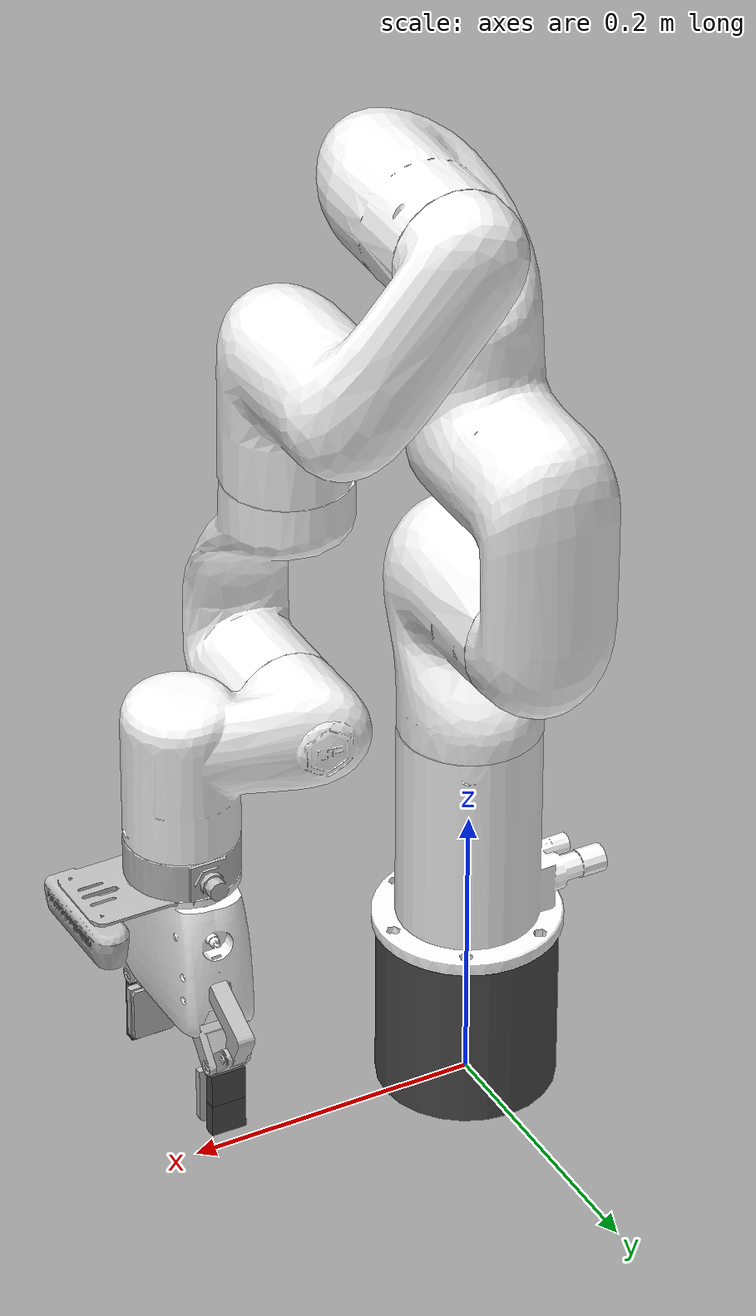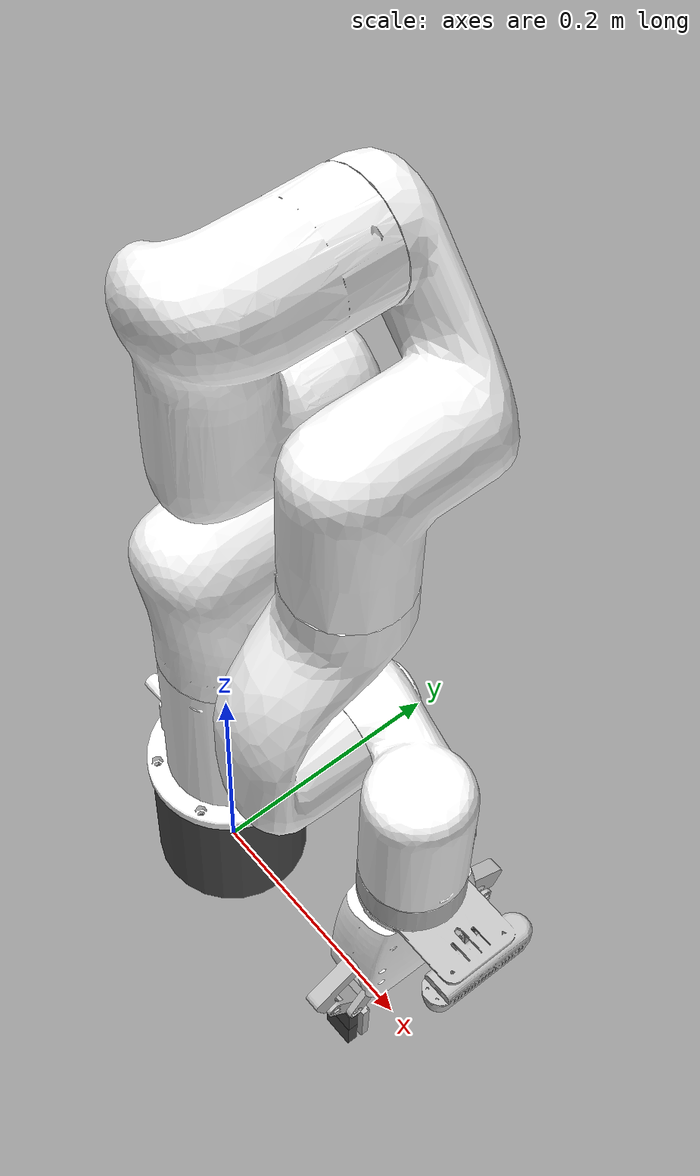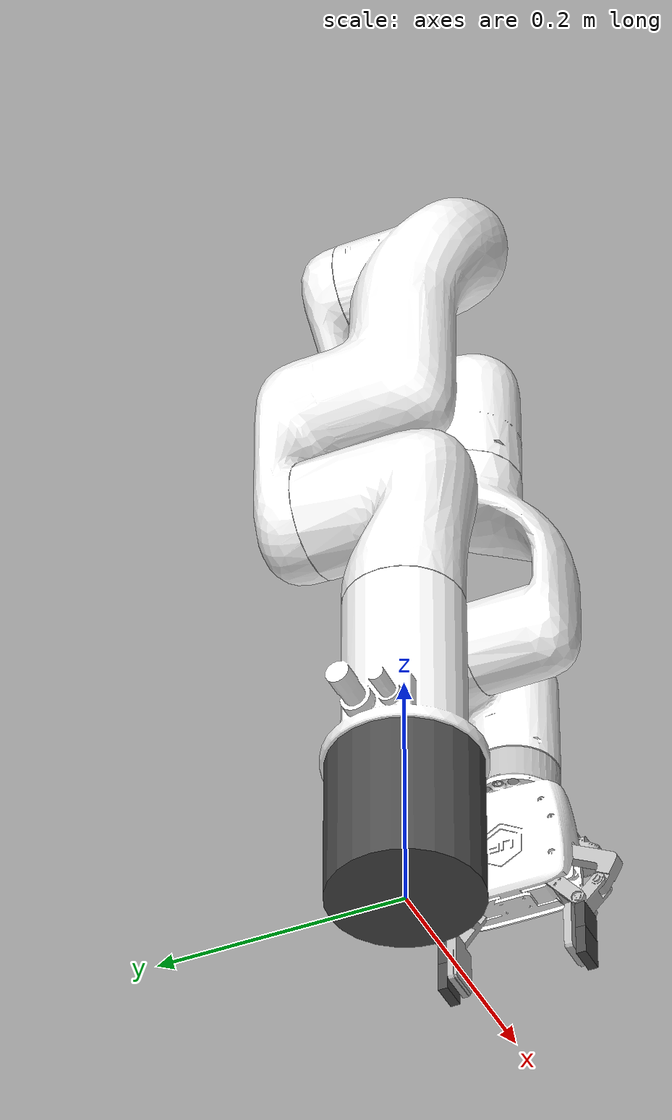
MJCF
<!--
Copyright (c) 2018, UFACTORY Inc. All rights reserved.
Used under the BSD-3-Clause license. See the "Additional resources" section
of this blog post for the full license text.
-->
<?xml version='1.0' encoding='utf-8'?>
<mujoco model="xarm6">

  <compiler angle="radian" meshdir="../meshes" autolimits="true" />

  <option timestep="0.002" integrator="implicitfast" solver="Newton" iterations="4" tolerance="1e-6">
    <flag eulerdamp="disable"/>
  </option>

  <default>
    <default class="xarm6">
      <joint axis="0 0 1" armature="0.1" damping="5.0" frictionloss="0.1" />
      <position kp="500" kv="50" forcerange="-100 100" />
    </default>
    <default class="visual">

      <geom type="mesh" contype="0" conaffinity="0" group="2" rgba="1 1 1 1" />
    </default>
    <default class="collision">

      <geom type="capsule" group="3" rgba="0.5 0.5 1 0.3" condim="4" friction="1 0.01 0.01" />
    </default>
    <default class="gripper">
      <joint axis="1 0 0" armature="0.01" damping="0.05" frictionloss="0.01" />
      <position kp="50" kv="5" forcerange="-50 50" />
    </default>
    <default class="gripper_visual">

      <geom type="mesh" contype="0" conaffinity="0" group="2" rgba="0.753 0.753 0.753 1" />
    </default>
    <default class="finger_pad">
      <geom type="box" condim="4" friction="1 0.1 0.01" rgba="0.3 0.3 0.3 1" solimp="0.95 0.99 0.001" solref="0.004 1" />
    </default>
    <default class="camera_visual">

      <geom type="mesh" contype="0" conaffinity="0" group="2" rgba="0.75 0.75 0.75 1" />
    </default>
    <default class="camera_collision">

      <geom type="box" group="3" rgba="0.5 0.8 0.5 0.3" condim="4" friction="1 0.01 0.01" />
    </default>
  </default>

  <asset>

    <mesh name="link_base" file="xarm6/visual/link_base.stl" />
    <mesh name="link1" file="xarm6/visual/link1.stl" />
    <mesh name="link2" file="xarm6/visual/link2.stl" />
    <mesh name="link3" file="xarm6/visual/link3.stl" />
    <mesh name="link4" file="xarm6/visual/link4.stl" />
    <mesh name="link5" file="xarm6/visual/link5.stl" />
    <mesh name="link6" file="xarm6/visual/link6.stl" />

    <mesh name="gripper_base" file="gripper/xarm/base_link.stl" />
    <mesh name="left_outer_knuckle" file="gripper/xarm/left_outer_knuckle.stl" />
    <mesh name="left_finger" file="gripper/xarm/left_finger.stl" />
    <mesh name="left_inner_knuckle" file="gripper/xarm/left_inner_knuckle.stl" />
    <mesh name="right_outer_knuckle" file="gripper/xarm/right_outer_knuckle.stl" />
    <mesh name="right_finger" file="gripper/xarm/right_finger.stl" />
    <mesh name="right_inner_knuckle" file="gripper/xarm/right_inner_knuckle.stl" />

    <mesh name="d435_with_cam_stand" file="camera/realsense/visual/d435_with_cam_stand.stl" />
  </asset>

  <worldbody>

    <geom name="robot_stand_visual" type="cylinder" pos="0 0 0.06" size="0.06 0.06"
          contype="0" conaffinity="0" group="2" rgba="0.3 0.3 0.3 1" />
    <geom name="robot_stand_collision" type="cylinder" pos="0 0 0.06" size="0.06 0.06"
          group="3" rgba="0.5 0.5 1 0.3" condim="4" friction="1 0.01 0.01" />

    <body name="link_base" pos="0 0 0.12" childclass="xarm6">
        <inertial pos="0.0 0.0 0.09103" mass="2.7" diaginertia="0.00494875 0.00494174 0.002219" />

        <geom class="visual" mesh="link_base" />

        <geom class="collision" type="capsule" size="0.06" fromto="0 0 0.02 0 0 0.12" />

        <body name="link1" pos="0 0 0.267">
          <inertial pos="0.00022 0.02951 -0.0124" mass="2.3814" fullinertia="0.0058562 0.0050316 0.003536652 -1.79e-05 3.55e-06 -0.000888336" />
          <joint name="joint1" range="-6.2832 6.2832" />

          <geom class="visual" mesh="link1" />

          <geom name="link1_collision" class="collision" type="capsule" size="0.055" fromto="0 0 -0.05 0 0.03 0.02" />

          <body name="link2" pos="0 0 0" euler="-1.5708 0 0">
            <inertial pos="0.03881 -0.22783 0.03496" mass="2.2675" fullinertia="0.028315776 0.0058 0.0273447 0.005 0.00066546 -0.0045741" />
            <joint name="joint2" range="-2.059 2.0944" />

            <geom class="visual" mesh="link2" />

            <geom name="link2_collision" class="collision" type="capsule" size="0.045" fromto="0.04 -0.02 0.03 0.04 -0.27 0.03" />

            <body name="link3" pos="0.0535 -0.2845 0">
              <inertial pos="0.07041 0.11631 0.0107" mass="1.875" fullinertia="0.0063483 0.00379758 0.00595768 -0.0015397 0.00096858 0.00186567" />
              <joint name="joint3" range="-3.927 0.19198" />

              <geom class="visual" mesh="link3" />

              <geom name="link3_collision" class="collision" type="capsule" size="0.04" fromto="0 0 0 0.07 0.12 0" />

              <body name="link4" pos="0.0775 0.3425 0" euler="-1.5708 0 0">
                <inertial pos="-0.00018 0.01798 -0.02291" mass="1.3192" fullinertia="0.004896 0.00445694 0.00134332 -6.925e-06 -1.418e-05 -0.00023186" />
                <joint name="joint4" range="-6.2832 6.2832" />

                <geom class="visual" mesh="link4" />

                <geom name="link4_collision" class="collision" type="capsule" size="0.035" fromto="0 0 -0.03 0 0.03 -0.03" />

                <body name="link5" pos="0 0 0" euler="1.5708 0 0">
                  <inertial pos="0.0651 0.03096 0.00315" mass="1.33854" fullinertia="0.00146378 0.00184192 0.002333524 -0.000450624 0.000284306 0.000130866" />
                  <joint name="joint5" range="-1.69297 3.14159" />

                  <geom class="visual" mesh="link5" />

                  <geom name="link5_collision" class="collision" type="capsule" size="0.035" fromto="0.03 0 0 0.076 0.05 0" />

                  <body name="link6" pos="0.076 0.097 0" euler="-1.5708 0 0">
                    <inertial pos="0 -0.00677 -0.01098" mass="0.17" fullinertia="9.3e-05 5.87e-05 0.000132 0.0 0.0 -3.6e-06" />
                    <joint name="joint6" range="-6.2832 6.2832" />

                    <geom class="visual" mesh="link6" rgba="0.753 0.753 0.753 1" />

                    <geom name="link6_collision" class="collision" type="sphere" size="0.025" pos="0 0 -0.01" />

                    <body name="xarm_gripper_base_link" pos="0 0 0" childclass="gripper">
                      <inertial pos="-0.00065489 -0.0018497 0.048028" mass="0.54156" fullinertia="0.00047106 0.00033072 0.00025642 3.9292e-07 2.6537e-06 -1.0975e-05" />

                      <geom class="gripper_visual" mesh="gripper_base" rgba="1 1 1 1" />

                      <geom name="gripper_base_collision" class="collision" type="capsule" size="0.025" fromto="0 -0.03 0.03 0 0.03 0.03" />

                      <body name="left_outer_knuckle" pos="0 0.035 0.059098">
                        <inertial pos="0 0.021559 0.015181" mass="0.033618" fullinertia="1.9111e-05 6.6256e-06 1.3185e-05 0 0 -7.3008e-06" />
                        <joint name="left_driver_joint" range="0 0.85" />

                        <geom class="gripper_visual" mesh="left_outer_knuckle" />

                        <body name="left_finger" pos="0 0.035465 0.042039">
                          <inertial pos="0 -0.016413 0.029258" mass="0.048304" fullinertia="1.7493e-05 1.7225e-05 5.1466e-06 0 0 4.6433e-06" />
                          <joint name="left_finger_joint" axis="-1 0 0" range="0 0.85" />

                          <geom class="gripper_visual" mesh="left_finger" />

                          <geom name="left_finger_pad_1" class="finger_pad" pos="0 -0.0135 0.032" size="0.012 0.004 0.012" />
                          <geom name="left_finger_pad_2" class="finger_pad" pos="0 -0.0135 0.055" size="0.012 0.004 0.012" />
                        </body>
                      </body>

                      <body name="left_inner_knuckle" pos="0 0.02 0.074098">
                        <inertial pos="1.866e-06 0.0220467 0.0261334" mass="0.0230126" fullinertia="6.0949e-06 6.01955e-06 5.0786e-06 0 0 -2.7532e-06" />
                        <joint name="left_inner_knuckle_joint" range="0 0.85" />

                        <geom class="gripper_visual" mesh="left_inner_knuckle" />
                      </body>

                      <body name="right_outer_knuckle" pos="0 -0.035 0.059098">
                        <inertial pos="0 -0.021559 0.015181" mass="0.033618" fullinertia="1.9111e-05 6.6256e-06 1.3185e-05 0 0 7.3008e-06" />
                        <joint name="right_driver_joint" axis="-1 0 0" range="0 0.85" />

                        <geom class="gripper_visual" mesh="right_outer_knuckle" />

                        <body name="right_finger" pos="0 -0.035465 0.042039">
                          <inertial pos="0 0.016413 0.029258" mass="0.048304" fullinertia="1.7493e-05 1.7225e-05 5.1466e-06 0 0 -4.6435e-06" />
                          <joint name="right_finger_joint" range="0 0.85" />

                          <geom class="gripper_visual" mesh="right_finger" />

                          <geom name="right_finger_pad_1" class="finger_pad" pos="0 0.0135 0.032" size="0.012 0.004 0.012" />
                          <geom name="right_finger_pad_2" class="finger_pad" pos="0 0.0135 0.055" size="0.012 0.004 0.012" />
                        </body>
                      </body>

                      <body name="right_inner_knuckle" pos="0 -0.02 0.074098">
                        <inertial pos="1.866e-06 -0.022047 0.026133" mass="0.023013" fullinertia="6.0949e-06 6.0197e-06 5.0784e-06 0 0 2.7531e-06" />
                        <joint name="right_inner_knuckle_joint" axis="-1 0 0" range="0 0.85" />

                        <geom class="gripper_visual" mesh="right_inner_knuckle" />
                      </body>

                      <site name="link_tcp" pos="0 0 0.172" size="0.01" rgba="0 1 0 0" />
                      <site name="link_eef" pos="0 0 0" size="0.008" rgba="1 0 0 0.5" />

                      <body name="realsense_d435i" pos="0 0 0">

                        <inertial pos="0.034 -0.009 0.012" mass="0.122" diaginertia="0.00008 0.00012 0.00008" />

                        <geom class="camera_visual" mesh="d435_with_cam_stand" />

                        <geom name="realsense_d435i_collision" class="camera_collision" pos="0.034 -0.009 0.012" size="0.04 0.015 0.015" />

                        <site name="camera_link" pos="0.06746 -0.0175 0.0237" euler="3.14159 -1.5708 0" size="0.003" rgba="1 0 0 0" />

                        <camera name="d435i_rgb" pos="0.06746 -0.0175 0.0237" xyaxes="0 1 0 1 0 0" fovy="62" mode="fixed" resolution="64 64" />

                        <camera name="d435i_depth" pos="0.06746 -0.0175 0.0237" xyaxes="0 1 0 1 0 0" fovy="58" mode="fixed" resolution="64 64" />
                      </body>

                    </body>

                  </body>
                </body>
              </body>
            </body>
          </body>
        </body>
      </body>
  </worldbody>

  <contact>
    <exclude body1="link_base" body2="link1" />
    <exclude body1="right_inner_knuckle" body2="right_outer_knuckle" />
    <exclude body1="right_inner_knuckle" body2="right_finger" />
    <exclude body1="left_inner_knuckle" body2="left_outer_knuckle" />
    <exclude body1="left_inner_knuckle" body2="left_finger" />
    <exclude body1="xarm_gripper_base_link" body2="left_outer_knuckle" />
    <exclude body1="xarm_gripper_base_link" body2="right_outer_knuckle" />
    <exclude body1="xarm_gripper_base_link" body2="left_inner_knuckle" />
    <exclude body1="xarm_gripper_base_link" body2="right_inner_knuckle" />

    <exclude body1="xarm_gripper_base_link" body2="realsense_d435i" />
    <exclude body1="link6" body2="realsense_d435i" />
  </contact>

  <tendon>

    <fixed name="left_coupling">
      <joint joint="left_driver_joint" coef="1" />
      <joint joint="left_finger_joint" coef="-1" />
    </fixed>
    <fixed name="left_inner_coupling">
      <joint joint="left_driver_joint" coef="1" />
      <joint joint="left_inner_knuckle_joint" coef="-1" />
    </fixed>

    <fixed name="right_coupling">
      <joint joint="left_driver_joint" coef="1" />
      <joint joint="right_driver_joint" coef="-1" />
    </fixed>
    <fixed name="right_finger_coupling">
      <joint joint="left_driver_joint" coef="1" />
      <joint joint="right_finger_joint" coef="-1" />
    </fixed>
    <fixed name="right_inner_coupling">
      <joint joint="left_driver_joint" coef="1" />
      <joint joint="right_inner_knuckle_joint" coef="-1" />
    </fixed>
  </tendon>

  <equality>
    <tendon tendon1="left_coupling" solimp="0.90 0.98 0.001" solref="0.02 1" />
    <tendon tendon1="left_inner_coupling" solimp="0.90 0.98 0.001" solref="0.02 1" />
    <tendon tendon1="right_coupling" solimp="0.90 0.98 0.001" solref="0.02 1" />
    <tendon tendon1="right_finger_coupling" solimp="0.90 0.98 0.001" solref="0.02 1" />
    <tendon tendon1="right_inner_coupling" solimp="0.90 0.98 0.001" solref="0.02 1" />
  </equality>

  <actuator>

    <position name="joint1_act" joint="joint1" class="xarm6" ctrlrange="-6.2832 6.2832" />
    <position name="joint2_act" joint="joint2" class="xarm6" ctrlrange="-2.059 2.0944" />
    <position name="joint3_act" joint="joint3" class="xarm6" ctrlrange="-3.927 0.19198" />
    <position name="joint4_act" joint="joint4" class="xarm6" ctrlrange="-6.2832 6.2832" />
    <position name="joint5_act" joint="joint5" class="xarm6" ctrlrange="-1.69297 3.14159" />
    <position name="joint6_act" joint="joint6" class="xarm6" ctrlrange="-6.2832 6.2832" />

    <position name="gripper_act" joint="left_driver_joint" class="gripper" ctrlrange="0 0.85" />
  </actuator>

  <sensor>

    <framepos name="tcp_pos" objtype="site" objname="link_tcp" />
  </sensor>

  <keyframe>

    <key name="home" qpos="0 -0.247 0 0.909 0 1.15644 0 0 0 0 0 0" ctrl="0 -0.247 0 0.909 0 1.15644 0" />
  </keyframe>
</mujoco>
